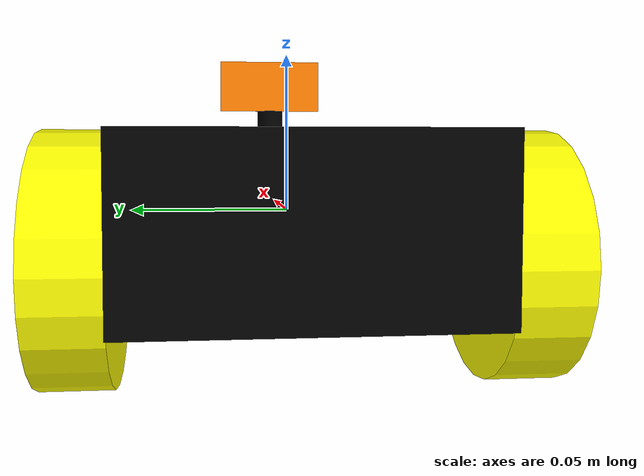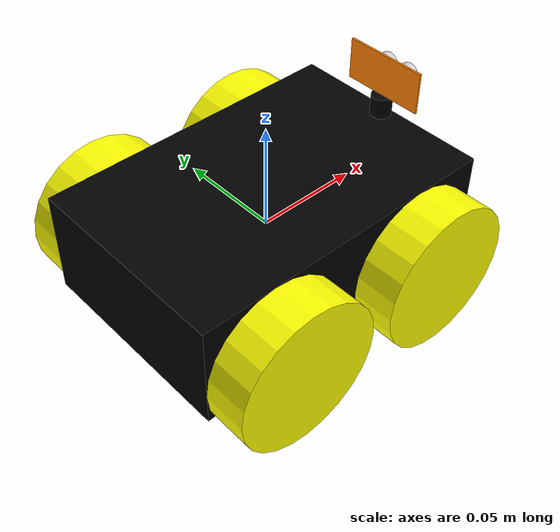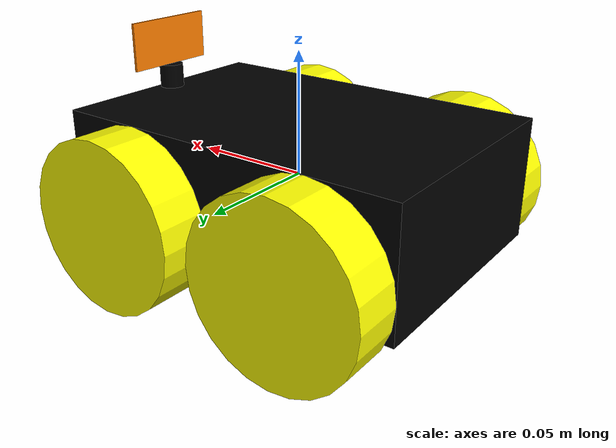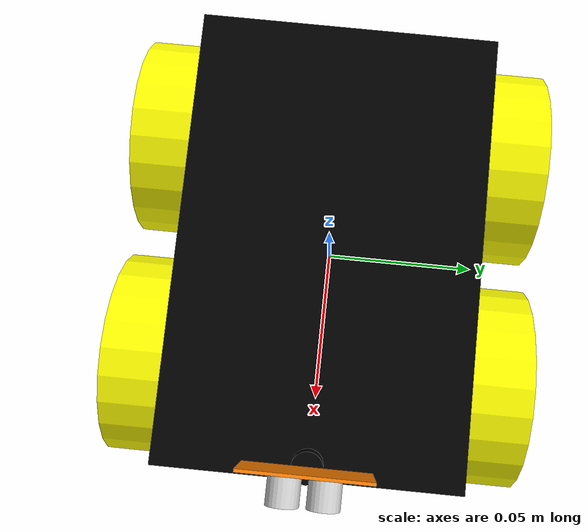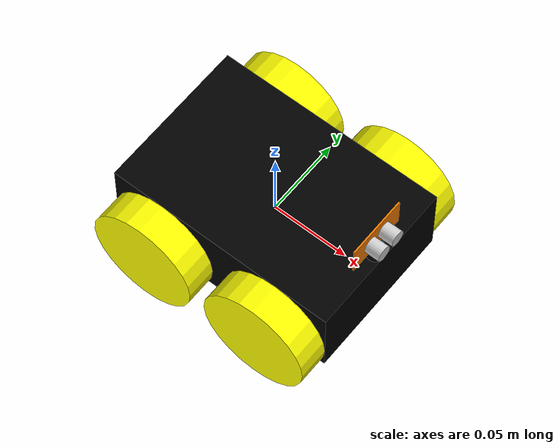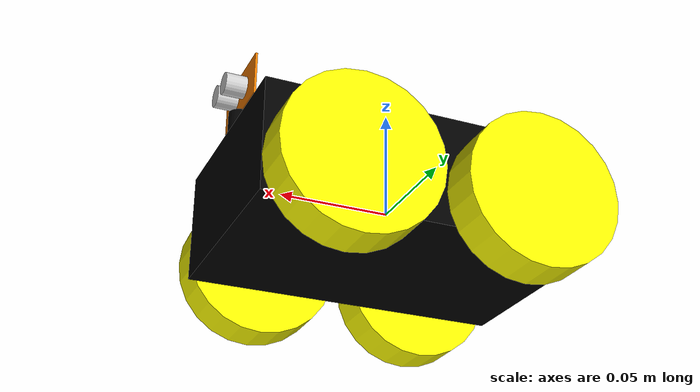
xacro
<?xml version='1.0'?>
<robot xmlns:xacro='http://www.ros.org/wiki/xacro' name='elgooso'>

	<material name='black'>
		<color rgba='0 0 0 1'/>
	</material>

	<material name='silver'>
		<color rgba='0.82 0.82 0.82 1'/>
	</material>

	<material name='yellow'>
		<color rgba='1 1 0 1'/>
	</material>

	<material name='white'>
		<color rgba='1 1 1 1'/>
	</material>

	<material name='orange'>
		<color rgba='1 0.5 0 1'/>
	</material>

	<xacro:property name = 'x' value = '0.15'/>
	<xacro:property name = 'y' value = '0.1'/>
	<xacro:property name = 'z' value = '0.05'/>

	<link name='body'>
		<visual>
			<geometry>
				<box size = '${x} ${y} ${z}' />
			</geometry>
			<material name='black'/>
		</visual>
		<collision>
			<geometry>
				<box size = '${x} ${y} ${z}' />
			</geometry>
			<origin xyz='0 0 0.045'/>
		</collision>
		<inertial>
    		<mass value='0.5'/>
    		<inertia ixx="1e-3" ixy="0.0" ixz="0.0" iyy="5e-4" iyz="0.0" izz="1e-3"/>
  		</inertial>
	</link>

	<link name='neck'>
		<visual>
			<geometry>
				<cylinder radius='0.005' length='0.01'/>
			</geometry>
			<origin xyz = '0 0 0.005'/>
			<material name='black'/>
		</visual>
		<inertial>
    		<mass value='0.01'/>
    		<inertia ixx="1e-7" ixy="0.0" ixz="0.0" iyy="1e-7" iyz="0.0" izz="1e-7"/>
  		</inertial>
	</link>
	<joint name='body_to_neck' type='revolute'>
		<axis xyz = '0 0 1'/>
		<limit effort='1000.0' lower='-0.785398' upper='0.785398' velocity='0.025'/>
   		<parent link='body'/>
    	<child link='neck'/>
    	<origin xyz='0.070 0 0.025'/>
  	</joint>

	<link name='head'>
		<visual>
			<geometry>
				<box size = '0.001 0.04 0.02' />
			</geometry>
			<origin xyz = '0 0 0.01'/>
			<material name='orange'/>
		</visual>
		<collision>
			<geometry>
				<box size = '0.1 0.1 0.1' />
			</geometry>
		</collision>
		<inertial>
    		<mass value='0.01'/>
    		<inertia ixx="1e-6" ixy="0.0" ixz="0.0" iyy="1e-6" iyz="0.0" izz="1e-7"/>
  		</inertial>
	</link>
	<joint name='neck_to_head' type='fixed'>
    	<parent link='neck'/>
    	<child link='head'/>
    	<origin xyz='0 0 0.01'/>
  	</joint>

  	<gazebo reference='head'>
  		<sensor name='sonar' type='gpu_lidar'>
			<pose relative_to='head'>0.01 0 0 0 0 0</pose>
			<topic>sonar</topic>
			<update_rate>5</update_rate>
			<ray>
				<scan>
					<horizontal>
						<samples>5</samples>
						<resolution>1.0</resolution>
						<min_angle>-0.25</min_angle>
						<max_angle>0.25</max_angle>
					</horizontal>
					<vertical>
						<samples>1</samples>
						<resolution>1.0</resolution>
						<min_angle>0.25</min_angle>
						<max_angle>0.25</max_angle>
					</vertical>
				</scan>
				<range>
					<min>0.08</min>
					<max>3.0</max>
					<resolution>0.01</resolution>
				</range>
			</ray>
			<always_on>1</always_on>
			<visualize>true</visualize>
			<plugin
				filename="libgz-sim-sensors-system.so"
				name="gz::sim::systems::Sensors">
				<render_engine>ogre2</render_engine>
			</plugin>
		</sensor>
	</gazebo>

	<xacro:macro name='ear' params='prefix reflect'>
		<link name='${prefix}_ear'>
			<visual>
				<geometry>
					<cylinder radius = '0.005' length = '0.01' />
				</geometry>
				<origin rpy = '0 1.5708 0' xyz = '0.005 0 0'/>
				<material name='silver'/>
			</visual>
			<inertial>
				<mass value='0.01'/>
				<inertia ixx="1e-7" ixy="0.0" ixz="0.0" iyy="1e-7" iyz="0.0" izz="1e-7"/>
	  		</inertial>
		</link>

		<joint name='head_to_${prefix}_ear' type='fixed'>
			<parent link='head'/>
			<child link='${prefix}_ear'/>
		  	<origin xyz='0 ${reflect*0.006} 0.01'/>
		</joint>
	</xacro:macro>

	<xacro:ear prefix='right' reflect='1'/>
	<xacro:ear prefix='left' reflect='-1'/>

	<xacro:property name='wheel_radius' value='0.035'/>
	<xacro:property name='wheel_width' value='0.02'/>

  	<xacro:macro name='wheel' params='prefix reflect offset'>
		<link name='${prefix}_wheel'>
			<visual>
				<geometry>
					<cylinder radius = '${wheel_radius}' length='${wheel_width}'/>
				</geometry>
				<origin rpy  = '-1.5708 0 0' xyz = '0 0 0'/>
				<material name='yellow'/>
			</visual>
			<collision>
				<geometry>
					<cylinder radius = '${wheel_radius}' length='${wheel_width}'/>
				</geometry>
				<origin rpy  = '-1.5708 0 0' xyz = '0 0 0'/>
			</collision>
			<inertial>
			  	<mass value='0.1'/>
			  	<inertia ixx="5e-5" ixy="0.0" ixz="0.0" iyy="5e-5" iyz="0.0" izz="9.2e-5"/>
			  	<origin rpy  = '-1.5708 0 0' xyz = '0 0 0'/>
			</inertial>
		</link>
		<joint name='body_to_${prefix}_wheel' type='revolute'>
			<parent link='body'/>
			<child link='${prefix}_wheel'/>
			<origin xyz='${offset*(x/2-wheel_radius)} ${reflect*(y/2+wheel_width/2)} -${(2*wheel_radius-z)/2}'/>
		  	<axis xyz = '0 1 0'/>
		  	<limit effort='1000.0' lower='-1.79769e+308' upper='1.79769e+308' velocity='10.0'/>
		</joint>
	</xacro:macro>

	<xacro:wheel prefix='left_front' reflect='1' offset='1'/>
	<xacro:wheel prefix='right_front' reflect='-1' offset='1'/>
	<xacro:wheel prefix='left_back' reflect='1' offset='-1'/>
	<xacro:wheel prefix='right_back' reflect='-1' offset='-1'/>

	<gazebo>
		<plugin
			filename="libgz-sim-diff-drive-system"
			name="gz::sim::systems::DiffDrive">
			<left_joint>body_to_left_front_wheel</left_joint>
			<left_joint>body_to_left_back_wheel</left_joint>
			<right_joint>body_to_right_front_wheel</right_joint>
			<right_joint>body_to_right_back_wheel</right_joint>
			<wheel_separation>0.1</wheel_separation>
			<wheel_radius>0.035</wheel_radius>
		</plugin>
	</gazebo>
</robot>
